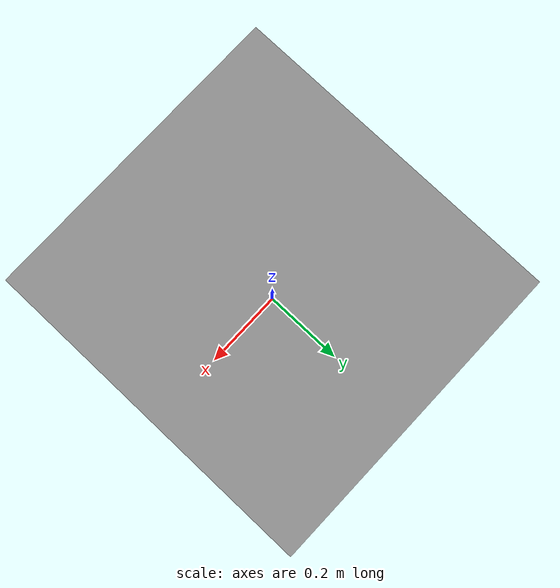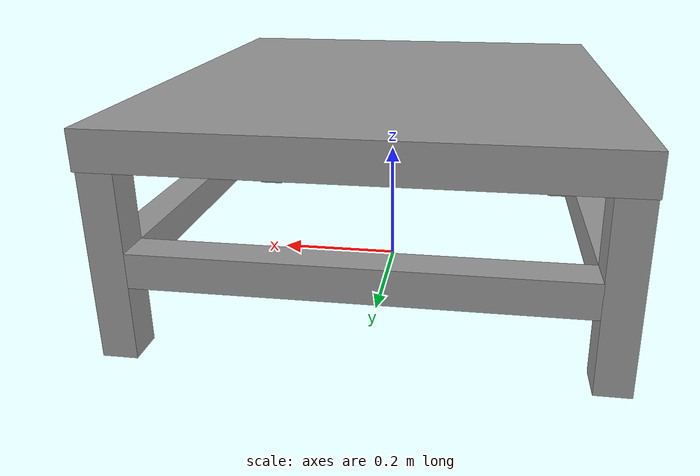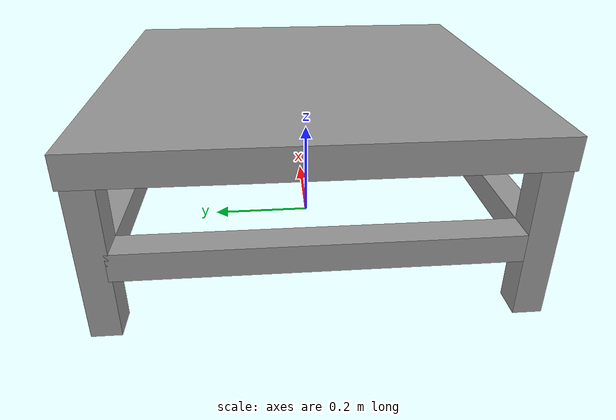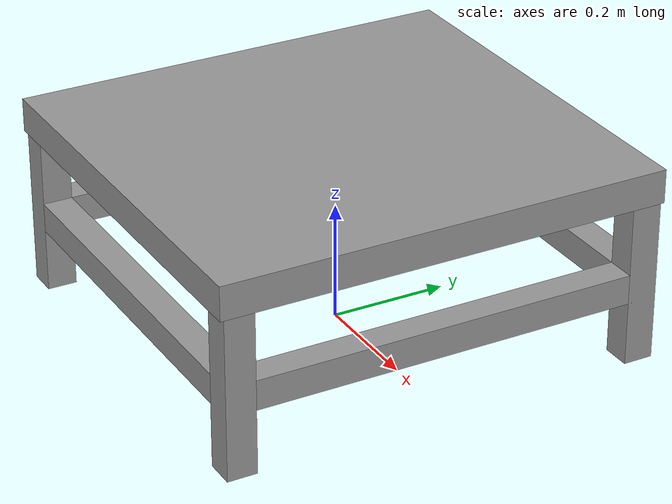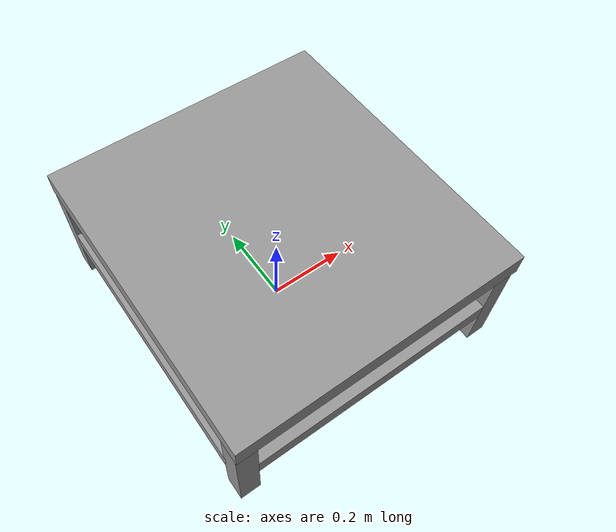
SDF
<?xml version="1.0"?>
<sdf version="1.7">
  <model name="extra_heavy_duty_table_surface_only_collision_lower_height">
    <link name="link">
      <inertial>
        <mass>53.5</mass>
        <inertia>
          <ixx>5.177409</ixx>
          <ixy>0</ixy>
          <ixz>0</ixz>
          <iyy>4.843753753</iyy>
          <iyz>0</iyz>
          <izz>4.843753753</izz>
        </inertia>
      </inertial>
      <self_collide>0</self_collide>
      <kinematic>0</kinematic>
      <visual name="back_right_leg">
        <pose>-0.33 -0.35 0.15 0 0 0</pose>
        <geometry>
          <box>
            <size>0.05 0.05 0.3</size>
          </box>
        </geometry>
        <material>
          <script>
            <uri>file://media/materials/scripts/gazebo.material</uri>
            <name>Gazebo/Grey</name>
          </script>
          <ambient>0.3 0.3 0.3 1</ambient>
          <diffuse>0.7 0.7 0.7 1</diffuse>
          <specular>0.01 0.01 0.01 1</specular>
          <emissive>0 0 0 1</emissive>
          <shader type="vertex">
            <normal_map>__default__</normal_map>
          </shader>
        </material>
        <cast_shadows>1</cast_shadows>
        <transparency>0</transparency>
      </visual>
      <visual name="front_left_leg">
        <pose>0.33 0.35 0.15 0 0 0</pose>
        <geometry>
          <box>
            <size>0.05 0.05 0.3</size>
          </box>
        </geometry>
        <material>
          <script>
            <uri>file://media/materials/scripts/gazebo.material</uri>
            <name>Gazebo/Grey</name>
          </script>
          <ambient>0.3 0.3 0.3 1</ambient>
          <diffuse>0.7 0.7 0.7 1</diffuse>
          <specular>0.01 0.01 0.01 1</specular>
          <emissive>0 0 0 1</emissive>
          <shader type="vertex">
            <normal_map>__default__</normal_map>
          </shader>
        </material>
        <cast_shadows>1</cast_shadows>
        <transparency>0</transparency>
      </visual>
      <visual name="left_crossbar">
        <pose>0.33 0 0.13335 0 0 0</pose>
        <geometry>
          <box>
            <size>0.05 0.662 0.05</size>
          </box>
        </geometry>
        <material>
          <script>
            <uri>file://media/materials/scripts/gazebo.material</uri>
            <name>Gazebo/Grey</name>
          </script>
          <ambient>0.3 0.3 0.3 1</ambient>
          <diffuse>0.7 0.7 0.7 1</diffuse>
          <specular>0.01 0.01 0.01 1</specular>
          <emissive>0 0 0 1</emissive>
          <shader type="vertex">
            <normal_map>__default__</normal_map>
          </shader>
        </material>
        <cast_shadows>1</cast_shadows>
        <transparency>0</transparency>
      </visual>
      <visual name="right_crossbar">
        <pose>-0.33 0 0.13335 0 0 0</pose>
        <geometry>
          <box>
            <size>0.05 0.662 0.05</size>
          </box>
        </geometry>
        <material>
          <script>
            <uri>file://media/materials/scripts/gazebo.material</uri>
            <name>Gazebo/Grey</name>
          </script>
          <ambient>0.3 0.3 0.3 1</ambient>
          <diffuse>0.7 0.7 0.7 1</diffuse>
          <specular>0.01 0.01 0.01 1</specular>
          <emissive>0 0 0 1</emissive>
          <shader type="vertex">
            <normal_map>__default__</normal_map>
          </shader>
        </material>
        <cast_shadows>1</cast_shadows>
        <transparency>0</transparency>
      </visual>
      <visual name="back_left_leg">
        <pose>-0.33 0.35 0.15 0 0 0</pose>
        <geometry>
          <box>
            <size>0.05 0.05 0.3</size>
          </box>
        </geometry>
        <material>
          <script>
            <uri>file://media/materials/scripts/gazebo.material</uri>
            <name>Gazebo/Grey</name>
          </script>
          <ambient>0.3 0.3 0.3 1</ambient>
          <diffuse>0.7 0.7 0.7 1</diffuse>
          <specular>0.01 0.01 0.01 1</specular>
          <emissive>0 0 0 1</emissive>
          <shader type="vertex">
            <normal_map>__default__</normal_map>
          </shader>
        </material>
        <cast_shadows>1</cast_shadows>
        <transparency>0</transparency>
      </visual>
      <visual name="front_right_leg">
        <pose>0.33 -0.35 0.15 0 0 0</pose>
        <geometry>
          <box>
            <size>0.05 0.05 0.3</size>
          </box>
        </geometry>
        <material>
          <script>
            <uri>file://media/materials/scripts/gazebo.material</uri>
            <name>Gazebo/Grey</name>
          </script>
          <ambient>0.3 0.3 0.3 1</ambient>
          <diffuse>0.7 0.7 0.7 1</diffuse>
          <specular>0.01 0.01 0.01 1</specular>
          <emissive>0 0 0 1</emissive>
          <shader type="vertex">
            <normal_map>__default__</normal_map>
          </shader>
        </material>
        <cast_shadows>1</cast_shadows>
        <transparency>0</transparency>
      </visual>
      <visual name="back_crossbar">
        <pose>0 0.35 0.13335 0 0 0</pose>
        <geometry>
          <box>
            <size>0.6112 0.05 0.05</size>
          </box>
        </geometry>
        <material>
          <script>
            <uri>file://media/materials/scripts/gazebo.material</uri>
            <name>Gazebo/Grey</name>
          </script>
          <ambient>0.3 0.3 0.3 1</ambient>
          <diffuse>0.7 0.7 0.7 1</diffuse>
          <specular>0.01 0.01 0.01 1</specular>
          <emissive>0 0 0 1</emissive>
          <shader type="vertex">
            <normal_map>__default__</normal_map>
          </shader>
        </material>
        <cast_shadows>1</cast_shadows>
        <transparency>0</transparency>
      </visual>
      <visual name="front_crossbar">
        <pose>0 -0.35 0.13335 0 0 0</pose>
        <geometry>
          <box>
            <size>0.6112 0.05 0.05</size>
          </box>
        </geometry>
        <material>
          <script>
            <uri>file://media/materials/scripts/gazebo.material</uri>
            <name>Gazebo/Grey</name>
          </script>
          <ambient>0.3 0.3 0.3 1</ambient>
          <diffuse>0.7 0.7 0.7 1</diffuse>
          <specular>0.01 0.01 0.01 1</specular>
          <emissive>0 0 0 1</emissive>
          <shader type="vertex">
            <normal_map>__default__</normal_map>
          </shader>
        </material>
        <cast_shadows>1</cast_shadows>
        <transparency>0</transparency>
      </visual>
      <visual name="visual1">
        <pose>0 0 0.3 0 0 0</pose>
        <geometry>
          <box>
            <size>0.7112 0.762 0.057</size>
          </box>
        </geometry>
        <material>
          <script>
            <uri>file://media/materials/scripts/gazebo.material</uri>
            <name>Gazebo/Grey</name>
          </script>
          <ambient>0.3 0.3 0.3 1</ambient>
          <diffuse>0.7 0.7 0.7 1</diffuse>
          <specular>0.01 0.01 0.01 1</specular>
          <emissive>0 0 0 1</emissive>
          <shader type="vertex">
            <normal_map>__default__</normal_map>
          </shader>
        </material>
        <cast_shadows>1</cast_shadows>
        <transparency>0</transparency>
      </visual>
      <collision name="surface">
        <laser_retro>0</laser_retro>
        <max_contacts>10</max_contacts>
        <pose>0 0 0.3 0 0 0</pose>
        <geometry>
          <box>
            <size>0.7112 0.762 0.057</size>
          </box>
        </geometry>
        <surface>
          <friction>
            <ode>
              <mu>0.6</mu>
              <mu2>0.6</mu2>
              <fdir1>0 0 0</fdir1>
              <slip1>0</slip1>
              <slip2>0</slip2>
            </ode>
            <torsional>
              <coefficient>1</coefficient>
              <patch_radius>0</patch_radius>
              <surface_radius>0</surface_radius>
              <use_patch_radius>1</use_patch_radius>
              <ode>
                <slip>0</slip>
              </ode>
            </torsional>
          </friction>
          <bounce>
            <restitution_coefficient>0</restitution_coefficient>
            <threshold>1e+06</threshold>
          </bounce>
          <contact>
            <collide_without_contact>0</collide_without_contact>
            <collide_without_contact_bitmask>1</collide_without_contact_bitmask>
            <collide_bitmask>1</collide_bitmask>
            <ode>
              <soft_cfm>0</soft_cfm>
              <soft_erp>0.2</soft_erp>
              <kp>1e+13</kp>
              <kd>1</kd>
              <max_vel>0.01</max_vel>
              <min_depth>0</min_depth>
            </ode>
            <bullet>
              <split_impulse>1</split_impulse>
              <split_impulse_penetration_threshold>-0.01</split_impulse_penetration_threshold>
              <soft_cfm>0</soft_cfm>
              <soft_erp>0.2</soft_erp>
              <kp>1e+13</kp>
              <kd>1</kd>
            </bullet>
          </contact>
        </surface>
      </collision>
    </link>
    <frame name="top_center">
      <!--
      TODO(eric.cousineau): @frame='link' is redundant, but not having it
      causes RBT SDFormat parsing code to segfault. Remove this once RBT is
      removed.
      -->
      <pose relative_to="link">0 0 0.3 0 0 0</pose>
    </frame>
    <allow_auto_disable>1</allow_auto_disable>
  </model>
</sdf>
